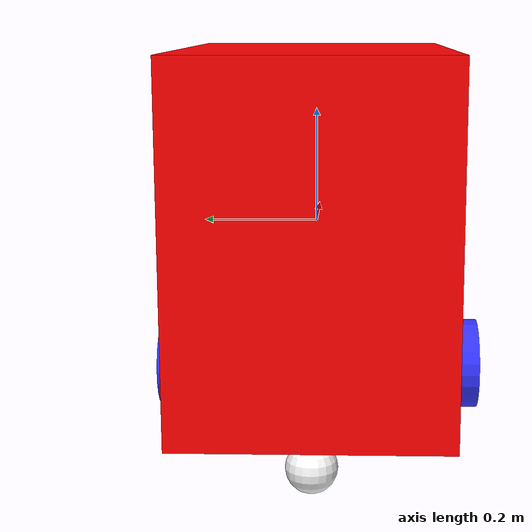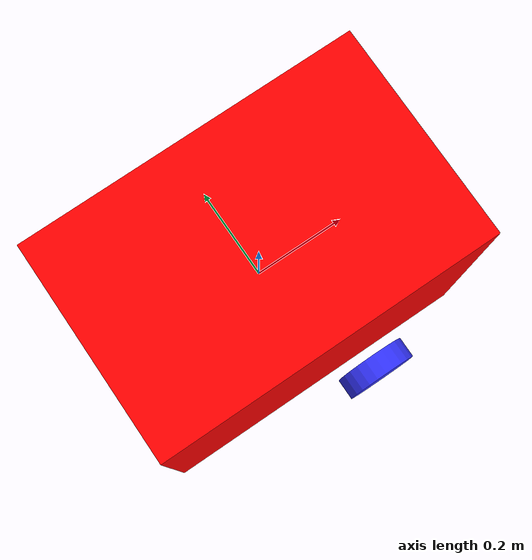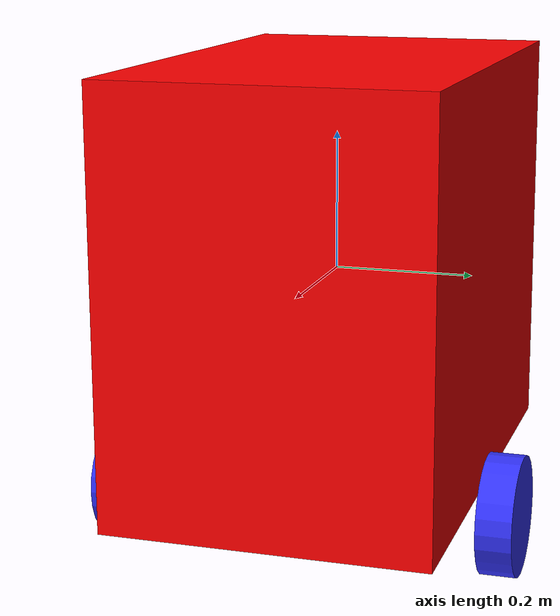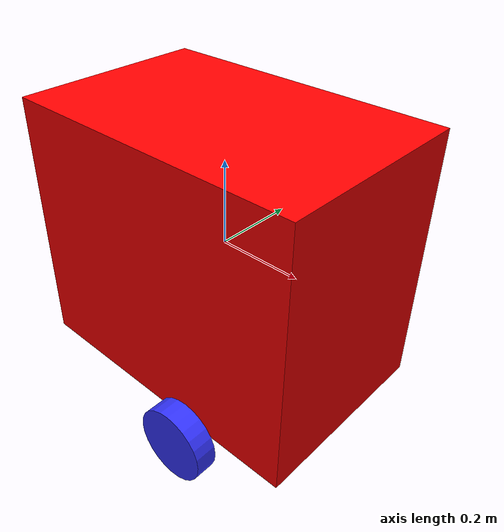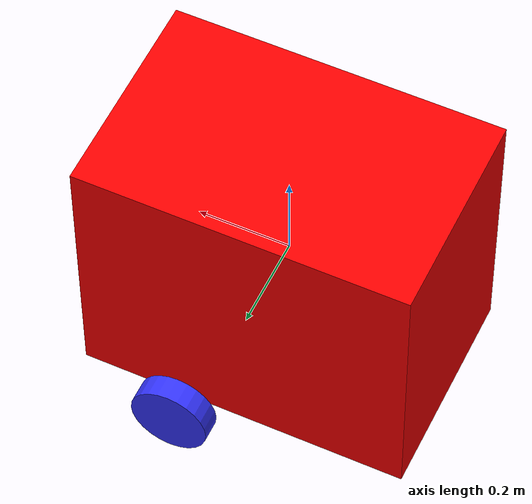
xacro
<?xml version="1.0"?>
<robot xmlns:xacro="http://www.ros.org/wiki/xacro" >

    <xacro:arg name="is_sim" default="true"/>

    <xacro:include filename="inertia_macro.urdf.xacro"/>

    <xacro:property name="chassis_width" value="0.46"/>
    <xacro:property name="chassis_length" value="0.714"/>
    <xacro:property name="chassis_height" value="0.61"/>
    <xacro:property name="chassis_mass" value="8"/>
    <xacro:property name="wheel_radius" value="0.085"/>
    <xacro:property name="wheel_thickness" value="0.05"/>
    <xacro:property name="wheel_mass" value="1.0"/>
    <xacro:property name="wheel_offset_x" value="0.13"/>
    <xacro:property name="wheel_offset_y" value="0.017"/>
    <xacro:property name="wheel_offset_z" value="0.02"/>
    <xacro:property name="caster_wheel_radius" value="0.014"/>
    <xacro:property name="caster_wheel_mass" value="2.5"/>
    <xacro:property name="caster_wheel_offset_x" value="0.3"/>
    <xacro:property name="pi_math" value="3.14159265359"/>
    <xacro:property name="caster_wheel_offset_z" value="${wheel_offset_z - wheel_radius + caster_wheel_radius}"/>

    <xacro:arg name="is_sim" default="true"/>
    <xacro:arg name="controllers_yaml" default=""/>

    <material name="blue">
        <color rgba="0.2 0.2 1 1"/>
    </material>

    <material name="red">
        <color rgba="1 0 0 1"/>
    </material>

    <material name="white">
        <color rgba="1 1 1 1"/>
    </material>

    <material name="black">
        <color rgba="0 0 0 1"/>
    </material>

    <!-- BASE LINK -->

    <link name="base_link">

        <visual>
            <origin xyz="0 0 0" rpy="0 0 0"/>
            <geometry>
                <box size="${chassis_length} ${chassis_width} ${chassis_height}"/>
            </geometry>
            <material name="red"/>
        </visual>
        <collision>
            <origin xyz="0 0 0" rpy="0 0 0"/>
            <geometry>
                <box size="${chassis_length} ${chassis_width} ${chassis_height}"/>
            </geometry>
        </collision>
        <xacro:inertial_box mass="${chassis_mass}" x="${chassis_length}" y="${chassis_width}" z="${chassis_height}">
            <origin xyz="0 0 0" rpy="0 0 0"/>
        </xacro:inertial_box>

    </link>

    <!-- BASE_FOOTPRINT LINK -->

    <joint name="base_footprint_joint" type="fixed">
        <parent link="base_link"/>
        <child link="base_footprint"/>
        <origin xyz="0 0 ${-chassis_height/2 - wheel_radius}" rpy="0 0 0"/>
    </joint>

    <link name="base_footprint">
    </link>

    <!-- LEFT WHEEL LINK -->

    <joint name="left_wheel_joint" type="continuous">
        <parent link="base_link"/>
        <child link="left_wheel"/>
        <origin xyz="${wheel_offset_x} ${chassis_width/2 + wheel_thickness} ${-chassis_height/2}" rpy="-${pi_math/2} 0 0" />
        <axis xyz="0 0 1"/>
    </joint>

    <link name="left_wheel">
        <visual>
            <geometry>
                <cylinder radius="${wheel_radius}" length="${wheel_thickness}"/>
            </geometry>
            <material name="blue"/>
        </visual>
        <collision>
            <geometry>
                <sphere radius="${wheel_radius}"/>
            </geometry>
        </collision>
        <xacro:inertial_cylinder mass="${wheel_mass}" length="${wheel_thickness}" radius="${wheel_radius}">
            <origin xyz="0 0 0" rpy="0 0 0"/>
        </xacro:inertial_cylinder>
    </link>

    <!-- RIGHT WHEEL LINK -->

    <joint name="right_wheel_joint" type="continuous">
        <parent link="base_link"/>
        <child link="right_wheel"/>
        <origin xyz="${wheel_offset_x} -${chassis_width/2 + wheel_thickness} ${-chassis_height/2}" rpy="-${pi_math/2} 0 0" />
        <axis xyz="0 0 1"/>
    </joint>

    <link name="right_wheel">
        <visual>
            <geometry>
                <cylinder radius="${wheel_radius}" length="${wheel_thickness}"/>
            </geometry>
            <material name="blue"/>
        </visual>
        <collision>
            <geometry>
                <sphere radius="${wheel_radius}"/>
            </geometry>
        </collision>
        <xacro:inertial_cylinder mass="${wheel_mass}" length="${wheel_thickness}" radius="${wheel_radius}">
            <origin xyz="0 0 0" rpy="0 0 0"/>
        </xacro:inertial_cylinder>
    </link>

    <!-- CASTER WHEEL LINK -->

    <joint name="caster_wheel_joint" type="fixed">
        <parent link="base_link"/>
        <child link="caster_wheel"/>
        <origin xyz="${-caster_wheel_offset_x} 0 ${-chassis_height/2 - wheel_radius/2}"/>
    </joint>

    <link name="caster_wheel">
        <visual>
            <geometry>
                <sphere radius="${wheel_radius/2}"/>
            </geometry>
            <material name="white"/>
        </visual>
        <collision>
            <geometry>
                <sphere radius="${wheel_radius/2}"/>
            </geometry>
        </collision>
        <xacro:inertial_sphere mass="${caster_wheel_mass}" radius="${wheel_radius/2}">
            <origin xyz="0 0 0" rpy="0 0 0"/>
        </xacro:inertial_sphere>
    </link>

</robot>
